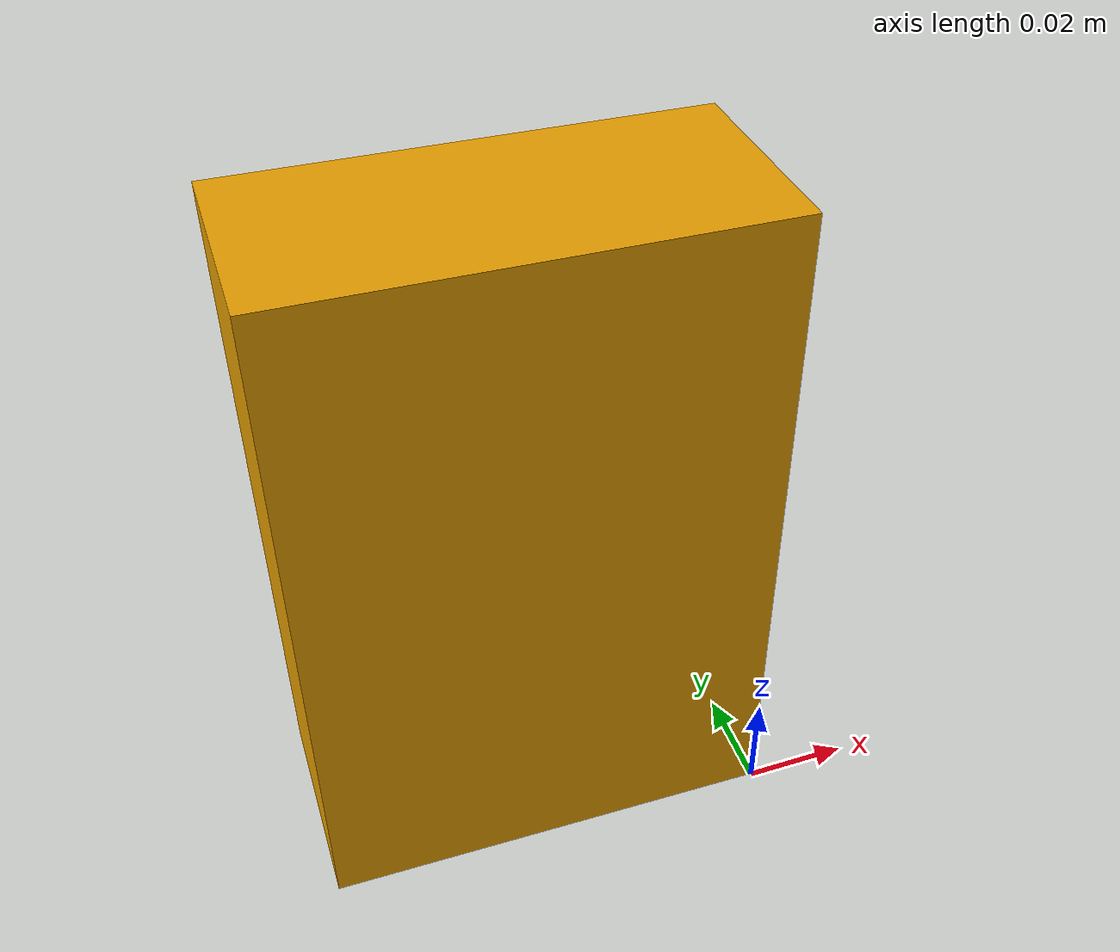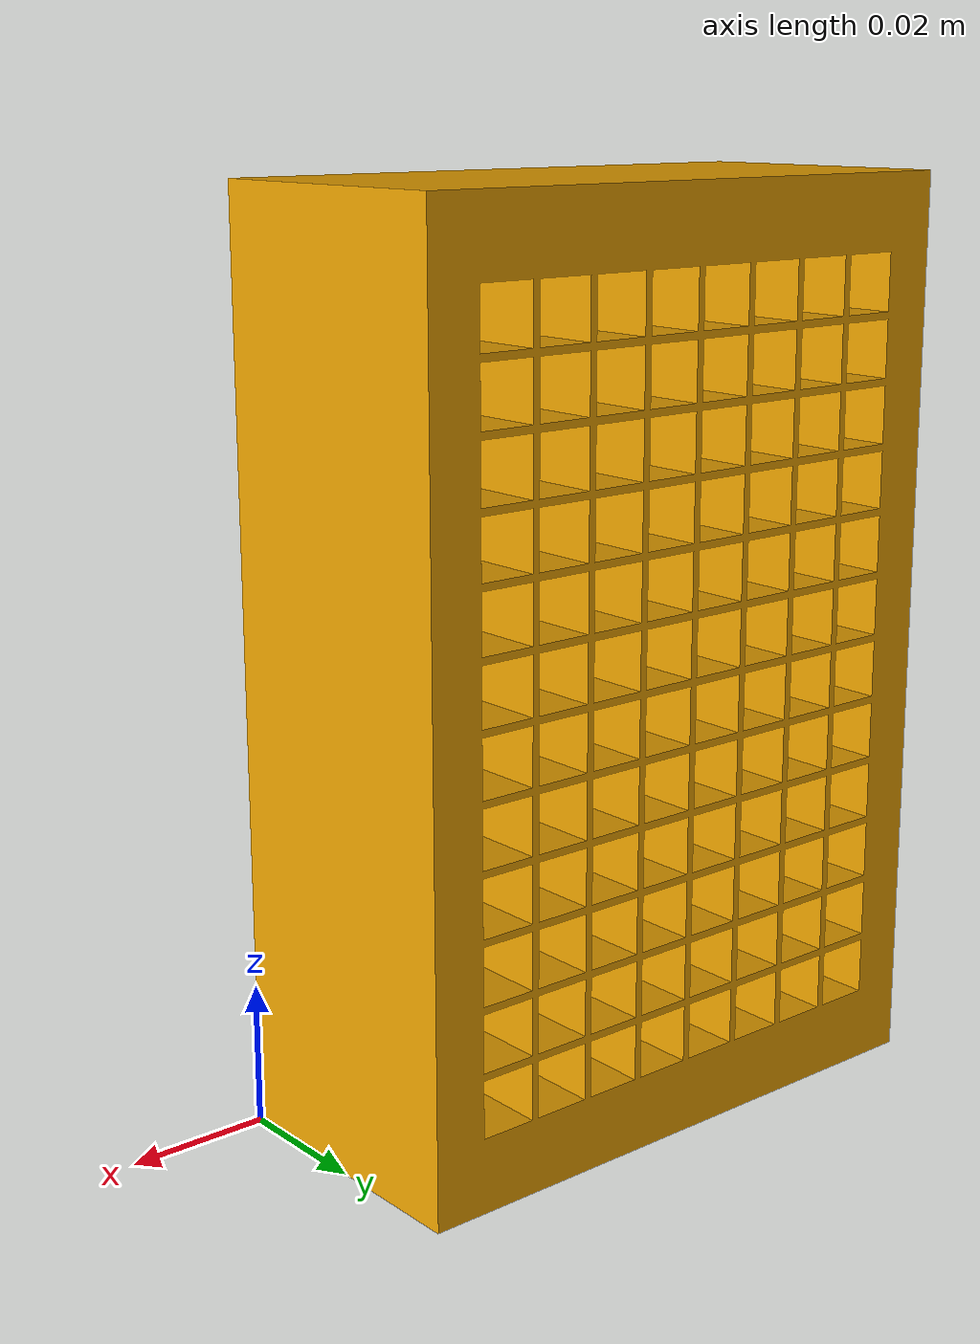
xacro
<?xml version="1.0" ?>
<robot xmlns:xacro="http://www.ros.org/wiki/xacro" name="plate_96_high">
    <link name='plate_link'>
      <visual name='visual'>
        <geometry>
          <mesh filename="meshes/plate_96_high.stl"/>
        </geometry>
        <material name="clay" />
      </visual>
    </link>
</robot>
